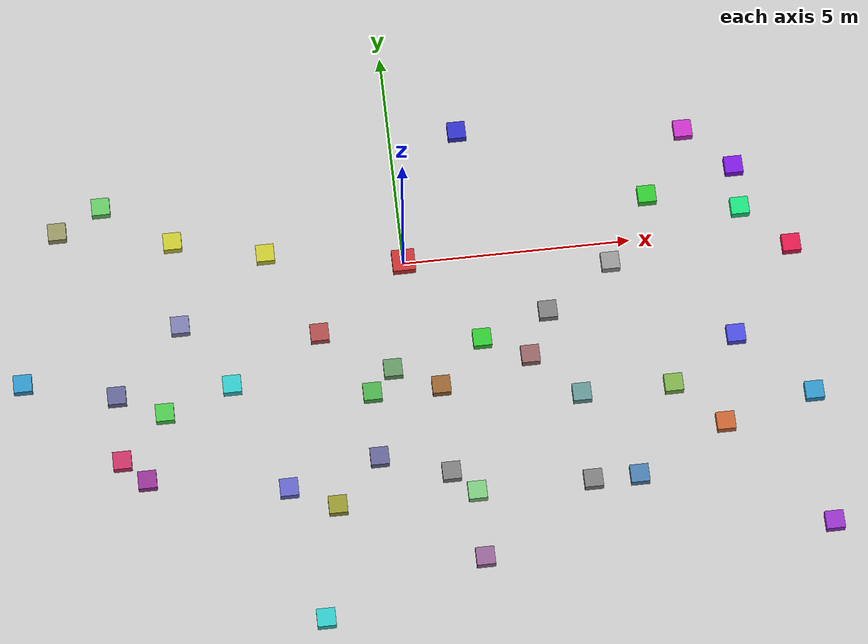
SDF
<?xml version="1.0" ?>
<sdf version="1.8">
  <world name="ethiopia_world">
    <scene>
      <ambient>0.8 0.8 0.8 1</ambient>
      <background>0.7 0.85 1.0 1</background>
      <grid>false</grid>
    </scene>

    <!-- Ground Plane -->
    <model name="ground_plane">
      <static>true</static>
      <link name="link">
        <collision name="collision">
          <geometry>
            <plane>
              <normal>0 0 1</normal>
              <size>100 100</size>
            </plane>
          </geometry>
        </collision>
        <visual name="visual">
          <geometry>
            <plane>
              <normal>0 0 1</normal>
              <size>100 100</size>
            </plane>
          </geometry>
          <material>
            <ambient>0.8 0.8 0.8 1</ambient>
            <diffuse>0.8 0.8 0.8 1</diffuse>
          </material>
        </visual>
      </link>
    </model>

    <!-- Lighting -->
    <light type="directional" name="sun">
      <cast_shadows>true</cast_shadows>
      <pose>0 0 10 0 0 0</pose>
      <diffuse>0.8 0.8 0.8 1</diffuse>
      <specular>0.2 0.2 0.2 1</specular>
      <attenuation>
        <range>1000</range>
        <constant>0.9</constant>
        <linear>0.01</linear>
        <quadratic>0.001</quadratic>
      </attenuation>
      <direction>-0.5 0.1 -0.9</direction>
    </light>

    <!-- Cities: All 41 states from Figure 5 (Relaxed Search Problem) -->
    <!-- Cartesian coordinate system, Addis Ababa at origin           -->

    <!-- Central Region -->
    <model name="addis_ababa">
      <static>true</static>
      <pose>0.0 0.0 0.1 0 0 0</pose>
      <link name="link">
        <visual name="visual">
          <geometry><box><size>0.5 0.5 0.2</size></box></geometry>
          <material><diffuse>0.8 0.2 0.2 1</diffuse></material>
        </visual>
      </link>
    </model>

    <model name="debre_birhan">
      <static>true</static>
      <pose>1.5 3.0 0.1 0 0 0</pose>
      <link name="link">
        <visual name="visual">
          <geometry><box><size>0.4 0.4 0.2</size></box></geometry>
          <material><diffuse>0.2 0.2 0.8 1</diffuse></material>
        </visual>
      </link>
    </model>

    <model name="ambo">
      <static>true</static>
      <pose>-3.0 0.5 0.1 0 0 0</pose>
      <link name="link">
        <visual name="visual">
          <geometry><box><size>0.4 0.4 0.2</size></box></geometry>
          <material><diffuse>0.8 0.8 0.2 1</diffuse></material>
        </visual>
      </link>
    </model>

    <model name="adama">
      <static>true</static>
      <pose>1.5 -2.0 0.1 0 0 0</pose>
      <link name="link">
        <visual name="visual">
          <geometry><box><size>0.4 0.4 0.2</size></box></geometry>
          <material><diffuse>0.2 0.8 0.2 1</diffuse></material>
        </visual>
      </link>
    </model>

    <model name="wolkite">
      <static>true</static>
      <pose>-2.0 -1.5 0.1 0 0 0</pose>
      <link name="link">
        <visual name="visual">
          <geometry><box><size>0.4 0.4 0.2</size></box></geometry>
          <material><diffuse>0.7 0.3 0.3 1</diffuse></material>
        </visual>
      </link>
    </model>

    <model name="buta_jirra">
      <static>true</static>
      <pose>-0.5 -2.5 0.1 0 0 0</pose>
      <link name="link">
        <visual name="visual">
          <geometry><box><size>0.4 0.4 0.2</size></box></geometry>
          <material><diffuse>0.4 0.6 0.4 1</diffuse></material>
        </visual>
      </link>
    </model>

    <model name="worabe">
      <static>true</static>
      <pose>-1.0 -3.0 0.1 0 0 0</pose>
      <link name="link">
        <visual name="visual">
          <geometry><box><size>0.4 0.4 0.2</size></box></geometry>
          <material><diffuse>0.3 0.7 0.3 1</diffuse></material>
        </visual>
      </link>
    </model>

    <model name="batu">
      <static>true</static>
      <pose>0.5 -3.0 0.1 0 0 0</pose>
      <link name="link">
        <visual name="visual">
          <geometry><box><size>0.4 0.4 0.2</size></box></geometry>
          <material><diffuse>0.6 0.4 0.2 1</diffuse></material>
        </visual>
      </link>
    </model>

    <!-- Western Region -->
    <model name="nekemte">
      <static>true</static>
      <pose>-5.0 1.0 0.1 0 0 0</pose>
      <link name="link">
        <visual name="visual">
          <geometry><box><size>0.4 0.4 0.2</size></box></geometry>
          <material><diffuse>0.8 0.8 0.2 1</diffuse></material>
        </visual>
      </link>
    </model>

    <model name="gimbi">
      <static>true</static>
      <pose>-6.5 2.0 0.1 0 0 0</pose>
      <link name="link">
        <visual name="visual">
          <geometry><box><size>0.4 0.4 0.2</size></box></geometry>
          <material><diffuse>0.4 0.8 0.4 1</diffuse></material>
        </visual>
      </link>
    </model>

    <model name="dembi_dollo">
      <static>true</static>
      <pose>-7.5 1.5 0.1 0 0 0</pose>
      <link name="link">
        <visual name="visual">
          <geometry><box><size>0.4 0.4 0.2</size></box></geometry>
          <material><diffuse>0.6 0.6 0.4 1</diffuse></material>
        </visual>
      </link>
    </model>

    <model name="bedelle">
      <static>true</static>
      <pose>-5.0 -1.0 0.1 0 0 0</pose>
      <link name="link">
        <visual name="visual">
          <geometry><box><size>0.4 0.4 0.2</size></box></geometry>
          <material><diffuse>0.5 0.5 0.7 1</diffuse></material>
        </visual>
      </link>
    </model>

    <model name="gore">
      <static>true</static>
      <pose>-6.5 -2.5 0.1 0 0 0</pose>
      <link name="link">
        <visual name="visual">
          <geometry><box><size>0.4 0.4 0.2</size></box></geometry>
          <material><diffuse>0.4 0.4 0.6 1</diffuse></material>
        </visual>
      </link>
    </model>

    <model name="gambella">
      <static>true</static>
      <pose>-8.5 -2.0 0.1 0 0 0</pose>
      <link name="link">
        <visual name="visual">
          <geometry><box><size>0.4 0.4 0.2</size></box></geometry>
          <material><diffuse>0.2 0.6 0.8 1</diffuse></material>
        </visual>
      </link>
    </model>

    <model name="tepi">
      <static>true</static>
      <pose>-6.5 -4.0 0.1 0 0 0</pose>
      <link name="link">
        <visual name="visual">
          <geometry><box><size>0.4 0.4 0.2</size></box></geometry>
          <material><diffuse>0.8 0.2 0.4 1</diffuse></material>
        </visual>
      </link>
    </model>

    <model name="bonga">
      <static>true</static>
      <pose>-5.5 -3.0 0.1 0 0 0</pose>
      <link name="link">
        <visual name="visual">
          <geometry><box><size>0.4 0.4 0.2</size></box></geometry>
          <material><diffuse>0.3 0.8 0.3 1</diffuse></material>
        </visual>
      </link>
    </model>

    <model name="mezan_tefari">
      <static>true</static>
      <pose>-6.0 -4.5 0.1 0 0 0</pose>
      <link name="link">
        <visual name="visual">
          <geometry><box><size>0.4 0.4 0.2</size></box></geometry>
          <material><diffuse>0.6 0.2 0.6 1</diffuse></material>
        </visual>
      </link>
    </model>

    <model name="jimma">
      <static>true</static>
      <pose>-4.0 -2.5 0.1 0 0 0</pose>
      <link name="link">
        <visual name="visual">
          <geometry><box><size>0.4 0.4 0.2</size></box></geometry>
          <material><diffuse>0.2 0.8 0.8 1</diffuse></material>
        </visual>
      </link>
    </model>

    <!-- Southern Region -->
    <model name="hossana">
      <static>true</static>
      <pose>-1.0 -4.5 0.1 0 0 0</pose>
      <link name="link">
        <visual name="visual">
          <geometry><box><size>0.4 0.4 0.2</size></box></geometry>
          <material><diffuse>0.4 0.4 0.6 1</diffuse></material>
        </visual>
      </link>
    </model>

    <model name="shashemene">
      <static>true</static>
      <pose>0.5 -5.0 0.1 0 0 0</pose>
      <link name="link">
        <visual name="visual">
          <geometry><box><size>0.4 0.4 0.2</size></box></geometry>
          <material><diffuse>0.5 0.5 0.5 1</diffuse></material>
        </visual>
      </link>
    </model>

    <model name="hawassa">
      <static>true</static>
      <pose>1.0 -5.5 0.1 0 0 0</pose>
      <link name="link">
        <visual name="visual">
          <geometry><box><size>0.4 0.4 0.2</size></box></geometry>
          <material><diffuse>0.5 0.8 0.5 1</diffuse></material>
        </visual>
      </link>
    </model>

    <model name="dilla">
      <static>true</static>
      <pose>1.0 -7.0 0.1 0 0 0</pose>
      <link name="link">
        <visual name="visual">
          <geometry><box><size>0.4 0.4 0.2</size></box></geometry>
          <material><diffuse>0.6 0.4 0.6 1</diffuse></material>
        </visual>
      </link>
    </model>

    <model name="wolaita_sodo">
      <static>true</static>
      <pose>-2.0 -5.5 0.1 0 0 0</pose>
      <link name="link">
        <visual name="visual">
          <geometry><box><size>0.4 0.4 0.2</size></box></geometry>
          <material><diffuse>0.6 0.6 0.2 1</diffuse></material>
        </visual>
      </link>
    </model>

    <model name="dawro">
      <static>true</static>
      <pose>-3.0 -5.0 0.1 0 0 0</pose>
      <link name="link">
        <visual name="visual">
          <geometry><box><size>0.4 0.4 0.2</size></box></geometry>
          <material><diffuse>0.4 0.4 0.8 1</diffuse></material>
        </visual>
      </link>
    </model>

    <model name="arba_minch">
      <static>true</static>
      <pose>-2.5 -8.0 0.1 0 0 0</pose>
      <link name="link">
        <visual name="visual">
          <geometry><box><size>0.4 0.4 0.2</size></box></geometry>
          <material><diffuse>0.2 0.8 0.8 1</diffuse></material>
        </visual>
      </link>
    </model>

    <!-- Eastern Region -->
    <model name="matahara">
      <static>true</static>
      <pose>3.0 -1.5 0.1 0 0 0</pose>
      <link name="link">
        <visual name="visual">
          <geometry><box><size>0.4 0.4 0.2</size></box></geometry>
          <material><diffuse>0.5 0.5 0.5 1</diffuse></material>
        </visual>
      </link>
    </model>

    <model name="awash">
      <static>true</static>
      <pose>4.5 -0.5 0.1 0 0 0</pose>
      <link name="link">
        <visual name="visual">
          <geometry><box><size>0.4 0.4 0.2</size></box></geometry>
          <material><diffuse>0.6 0.6 0.6 1</diffuse></material>
        </visual>
      </link>
    </model>

    <model name="chiro">
      <static>true</static>
      <pose>5.5 1.0 0.1 0 0 0</pose>
      <link name="link">
        <visual name="visual">
          <geometry><box><size>0.4 0.4 0.2</size></box></geometry>
          <material><diffuse>0.2 0.8 0.2 1</diffuse></material>
        </visual>
      </link>
    </model>

    <model name="dire_dawa">
      <static>true</static>
      <pose>6.5 2.5 0.1 0 0 0</pose>
      <link name="link">
        <visual name="visual">
          <geometry><box><size>0.4 0.4 0.2</size></box></geometry>
          <material><diffuse>0.8 0.2 0.8 1</diffuse></material>
        </visual>
      </link>
    </model>

    <model name="harar">
      <static>true</static>
      <pose>7.5 1.5 0.1 0 0 0</pose>
      <link name="link">
        <visual name="visual">
          <geometry><box><size>0.4 0.4 0.2</size></box></geometry>
          <material><diffuse>0.5 0.1 0.9 1</diffuse></material>
        </visual>
      </link>
    </model>

    <model name="babile">
      <static>true</static>
      <pose>7.5 0.5 0.1 0 0 0</pose>
      <link name="link">
        <visual name="visual">
          <geometry><box><size>0.4 0.4 0.2</size></box></geometry>
          <material><diffuse>0.1 0.9 0.5 1</diffuse></material>
        </visual>
      </link>
    </model>

    <model name="jijiga">
      <static>true</static>
      <pose>8.5 -0.5 0.1 0 0 0</pose>
      <link name="link">
        <visual name="visual">
          <geometry><box><size>0.4 0.4 0.2</size></box></geometry>
          <material><diffuse>0.9 0.1 0.3 1</diffuse></material>
        </visual>
      </link>
    </model>

    <model name="dega_habur">
      <static>true</static>
      <pose>7.0 -2.5 0.1 0 0 0</pose>
      <link name="link">
        <visual name="visual">
          <geometry><box><size>0.4 0.4 0.2</size></box></geometry>
          <material><diffuse>0.3 0.3 0.9 1</diffuse></material>
        </visual>
      </link>
    </model>

    <model name="kebri_dehar">
      <static>true</static>
      <pose>8.5 -4.0 0.1 0 0 0</pose>
      <link name="link">
        <visual name="visual">
          <geometry><box><size>0.4 0.4 0.2</size></box></geometry>
          <material><diffuse>0.2 0.6 0.8 1</diffuse></material>
        </visual>
      </link>
    </model>

    <model name="gode">
      <static>true</static>
      <pose>8.5 -7.0 0.1 0 0 0</pose>
      <link name="link">
        <visual name="visual">
          <geometry><box><size>0.4 0.4 0.2</size></box></geometry>
          <material><diffuse>0.6 0.2 0.8 1</diffuse></material>
        </visual>
      </link>
    </model>

    <!-- Southeast Region -->
    <model name="assella">
      <static>true</static>
      <pose>2.5 -2.5 0.1 0 0 0</pose>
      <link name="link">
        <visual name="visual">
          <geometry><box><size>0.4 0.4 0.2</size></box></geometry>
          <material><diffuse>0.6 0.4 0.4 1</diffuse></material>
        </visual>
      </link>
    </model>

    <model name="assasa">
      <static>true</static>
      <pose>3.5 -3.5 0.1 0 0 0</pose>
      <link name="link">
        <visual name="visual">
          <geometry><box><size>0.4 0.4 0.2</size></box></geometry>
          <material><diffuse>0.4 0.6 0.6 1</diffuse></material>
        </visual>
      </link>
    </model>

    <model name="dodola">
      <static>true</static>
      <pose>3.5 -5.5 0.1 0 0 0</pose>
      <link name="link">
        <visual name="visual">
          <geometry><box><size>0.4 0.4 0.2</size></box></geometry>
          <material><diffuse>0.5 0.5 0.5 1</diffuse></material>
        </visual>
      </link>
    </model>

    <model name="bale">
      <static>true</static>
      <pose>4.5 -5.5 0.1 0 0 0</pose>
      <link name="link">
        <visual name="visual">
          <geometry><box><size>0.4 0.4 0.2</size></box></geometry>
          <material><diffuse>0.3 0.5 0.7 1</diffuse></material>
        </visual>
      </link>
    </model>

    <model name="goba">
      <static>true</static>
      <pose>5.5 -3.5 0.1 0 0 0</pose>
      <link name="link">
        <visual name="visual">
          <geometry><box><size>0.4 0.4 0.2</size></box></geometry>
          <material><diffuse>0.5 0.7 0.3 1</diffuse></material>
        </visual>
      </link>
    </model>

    <model name="sof_oumer">
      <static>true</static>
      <pose>6.5 -4.5 0.1 0 0 0</pose>
      <link name="link">
        <visual name="visual">
          <geometry><box><size>0.4 0.4 0.2</size></box></geometry>
          <material><diffuse>0.8 0.4 0.2 1</diffuse></material>
        </visual>
      </link>
    </model>

    <!-- Three-wheel robot with differential drive (Requirement 5.1)  -->
    <!-- 2 drive wheels + 1 caster wheel                              -->
    <!-- Sensors: RGB Camera, Proximity Sensor, Gyroscope/IMU         -->
    <model name="ethio_bot">
      <pose>0 0 0.08 0 0 0</pose>
      <static>false</static>

      <!-- ---- Chassis ---- -->
      <link name="base_link">
        <pose>0 0 0 0 0 0</pose>
        <visual name="visual">
          <geometry>
            <box>
              <size>0.4 0.28 0.08</size>
            </box>
          </geometry>
          <material>
            <ambient>0 0 0.8 1</ambient>
            <diffuse>0 0 0.8 1</diffuse>
          </material>
        </visual>
        <collision name="collision">
          <geometry>
            <box>
              <size>0.4 0.28 0.08</size>
            </box>
          </geometry>
        </collision>
        <inertial>
          <mass>5.0</mass>
          <inertia>
            <ixx>0.0408</ixx>
            <iyy>0.0708</iyy>
            <izz>0.0983</izz>
          </inertia>
        </inertial>

        <!-- RGB Camera sensor (Requirement 5.1) -->
        <sensor name="rgb_camera" type="camera">
          <pose>0.2 0 0.05 0 0 0</pose>
          <always_on>true</always_on>
          <update_rate>15</update_rate>
          <camera>
            <horizontal_fov>1.047</horizontal_fov>
            <image>
              <width>320</width>
              <height>240</height>
              <format>R8G8B8</format>
            </image>
            <clip><near>0.1</near><far>100</far></clip>
          </camera>
        </sensor>

        <!-- IMU / Gyroscope sensor (Requirement 5.1) -->
        <sensor name="imu_sensor" type="imu">
          <always_on>true</always_on>
          <update_rate>50</update_rate>
        </sensor>
      </link>

      <!-- ---- Left Drive Wheel ---- -->
      <!-- Positioned behind centre, left side, rotated so cylinder axis = Y -->
      <link name="left_wheel">
        <pose>-0.08 0.175 -0.03 -1.5708 0 0</pose>
        <visual name="visual">
          <geometry>
            <cylinder>
              <radius>0.05</radius>
              <length>0.04</length>
            </cylinder>
          </geometry>
          <material>
            <ambient>0.15 0.15 0.15 1</ambient>
            <diffuse>0.15 0.15 0.15 1</diffuse>
          </material>
        </visual>
        <collision name="collision">
          <geometry>
            <cylinder>
              <radius>0.05</radius>
              <length>0.04</length>
            </cylinder>
          </geometry>
          <surface>
            <friction>
              <ode>
                <mu>1.2</mu>
                <mu2>1.2</mu2>
              </ode>
            </friction>
          </surface>
        </collision>
        <inertial>
          <mass>0.5</mass>
          <inertia>
            <ixx>0.00038</ixx>
            <iyy>0.00038</iyy>
            <izz>0.000625</izz>
          </inertia>
        </inertial>
      </link>

      <!-- ---- Right Drive Wheel ---- -->
      <link name="right_wheel">
        <pose>-0.08 -0.175 -0.03 -1.5708 0 0</pose>
        <visual name="visual">
          <geometry>
            <cylinder>
              <radius>0.05</radius>
              <length>0.04</length>
            </cylinder>
          </geometry>
          <material>
            <ambient>0.15 0.15 0.15 1</ambient>
            <diffuse>0.15 0.15 0.15 1</diffuse>
          </material>
        </visual>
        <collision name="collision">
          <geometry>
            <cylinder>
              <radius>0.05</radius>
              <length>0.04</length>
            </cylinder>
          </geometry>
          <surface>
            <friction>
              <ode>
                <mu>1.2</mu>
                <mu2>1.2</mu2>
              </ode>
            </friction>
          </surface>
        </collision>
        <inertial>
          <mass>0.5</mass>
          <inertia>
            <ixx>0.00038</ixx>
            <iyy>0.00038</iyy>
            <izz>0.000625</izz>
          </inertia>
        </inertial>
      </link>

      <!-- ---- Caster Wheel (third wheel, front) ---- -->
      <link name="caster_wheel">
        <pose>0.17 0 -0.055 0 0 0</pose>
        <visual name="visual">
          <geometry>
            <sphere>
              <radius>0.025</radius>
            </sphere>
          </geometry>
          <material>
            <ambient>0.15 0.15 0.15 1</ambient>
            <diffuse>0.15 0.15 0.15 1</diffuse>
          </material>
        </visual>
        <collision name="collision">
          <geometry>
            <sphere>
              <radius>0.025</radius>
            </sphere>
          </geometry>
          <surface>
            <friction>
              <ode>
                <mu>0.0</mu>
                <mu2>0.0</mu2>
              </ode>
            </friction>
          </surface>
        </collision>
        <inertial>
          <mass>0.2</mass>
          <inertia>
            <ixx>0.00001</ixx>
            <iyy>0.00001</iyy>
            <izz>0.00001</izz>
          </inertia>
        </inertial>
      </link>

      <!-- Proximity sensor link (front-mounted, Requirement 5.1) -->
      <link name="proximity_link">
        <pose>0.21 0 0 0 0 0</pose>
        <sensor name="proximity_sensor" type="gpu_lidar">
          <always_on>true</always_on>
          <update_rate>10</update_rate>
          <lidar>
            <scan>
              <horizontal>
                <samples>1</samples>
                <resolution>1</resolution>
                <min_angle>0</min_angle>
                <max_angle>0</max_angle>
              </horizontal>
            </scan>
            <range>
              <min>0.05</min>
              <max>3.0</max>
              <resolution>0.01</resolution>
            </range>
          </lidar>
        </sensor>
        <inertial>
          <mass>0.01</mass>
          <inertia>
            <ixx>0.000001</ixx>
            <iyy>0.000001</iyy>
            <izz>0.000001</izz>
          </inertia>
        </inertial>
      </link>

      <!-- ---- Joints ---- -->
      <joint name="left_wheel_joint" type="revolute">
        <parent>base_link</parent>
        <child>left_wheel</child>
        <axis>
          <xyz expressed_in='__model__'>0 1 0</xyz>
          <limit>
            <lower>-1.79769e+308</lower>
            <upper>1.79769e+308</upper>
          </limit>
        </axis>
      </joint>

      <joint name="right_wheel_joint" type="revolute">
        <parent>base_link</parent>
        <child>right_wheel</child>
        <axis>
          <xyz expressed_in='__model__'>0 1 0</xyz>
          <limit>
            <lower>-1.79769e+308</lower>
            <upper>1.79769e+308</upper>
          </limit>
        </axis>
      </joint>

      <joint name="caster_joint" type="ball">
        <parent>base_link</parent>
        <child>caster_wheel</child>
      </joint>

      <joint name="proximity_joint" type="fixed">
        <parent>base_link</parent>
        <child>proximity_link</child>
      </joint>

      <!-- Differential Drive Plugin for Gazebo Sim -->
      <plugin filename="gz-sim-diff-drive-system" name="gz::sim::systems::DiffDrive">
        <left_joint>left_wheel_joint</left_joint>
        <right_joint>right_wheel_joint</right_joint>
        <wheel_separation>0.35</wheel_separation>
        <wheel_radius>0.05</wheel_radius>
        <odom_publish_frequency>50</odom_publish_frequency>
        <topic>cmd_vel</topic>
        <odom_topic>odom</odom_topic>
        <odom_frame>odom</odom_frame>
        <robot_base_frame>base_link</robot_base_frame>
      </plugin>
    </model>

  </world>
</sdf>
